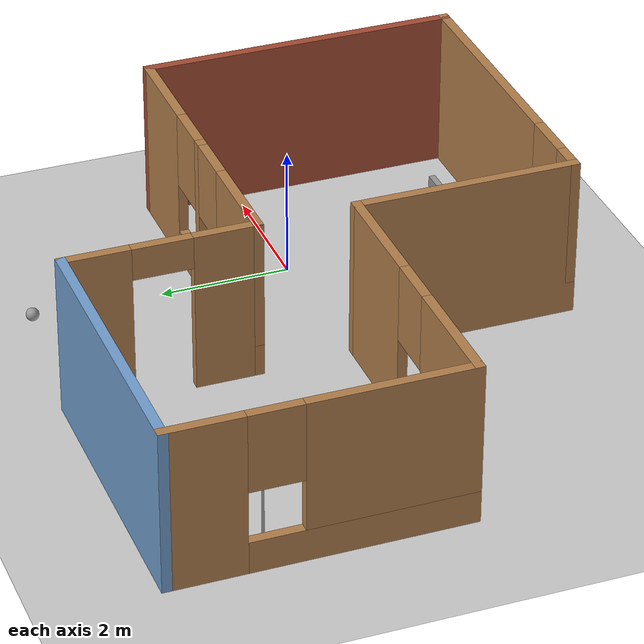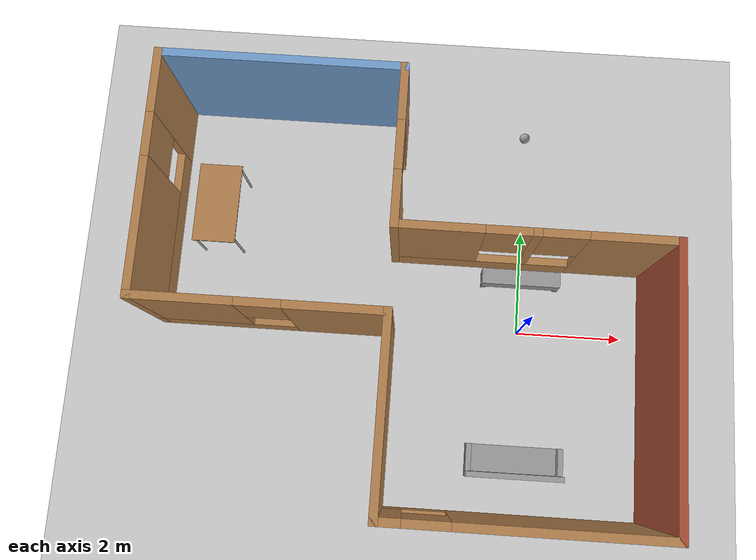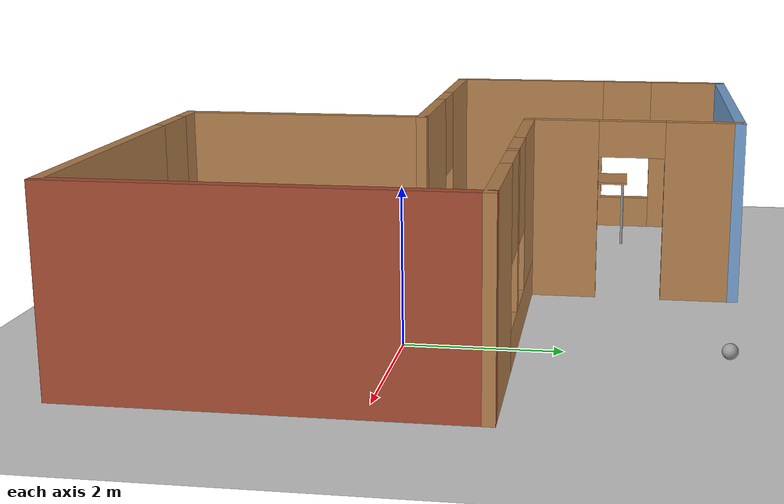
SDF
<sdf version="1.6">
 <world name="default">
  <plugin name="welcome" filename="libwelcome.so"/>
  <light name="sun" type="directional">
   <pose>0 0 10 0 -0 0</pose>
   <diffuse>0.8 0.8 0.8 1</diffuse>
   <specular>0.2 0.2 0.2 1</specular>
   <attenuation>
    <range>1000</range>
    <constant>0.9</constant>
    <linear>0.01</linear>
    <quadratic>0.001</quadratic>
   </attenuation>
   <direction>-0.5 0.1 -0.9</direction>
  </light>
  <model name="ground_plane">
   <static>1</static>
   <link name="link">
    <collision name="collision">
     <geometry><plane><normal>0 0 1</normal><size>100 100</size></plane></geometry>
     <surface>
      <contact><collide_bitmask>65535</collide_bitmask></contact>
      <friction><ode><mu>100</mu><mu2>50</mu2></ode></friction>
     </surface>
    </collision>
    <visual name="visual">
     <cast_shadows>0</cast_shadows>
     <geometry><plane><normal>0 0 1</normal><size>100 100</size></plane></geometry>
     <material>
      <script><uri>file://media/materials/scripts/gazebo.material</uri><name>Gazebo/Grey</name></script>
     </material>
    </visual>
   </link>
  </model>
  <gravity>0 0 -9.8</gravity>
  <magnetic_field>6e-06 2.3e-05 -4.2e-05</magnetic_field>
  <atmosphere type="adiabatic"/>
  <physics name="default_physics" default="0" type="ode">
   <max_step_size>0.001</max_step_size>
   <real_time_factor>1</real_time_factor>
   <real_time_update_rate>1000</real_time_update_rate>
  </physics>
  <scene><ambient>0.4 0.4 0.4 1</ambient><background>0.7 0.7 0.7 1</background><shadows>1</shadows></scene>
  <spherical_coordinates>
   <surface_model>EARTH_WGS84</surface_model>
   <latitude_deg>0</latitude_deg>
   <longitude_deg>0</longitude_deg>
   <elevation>0</elevation>
   <heading_deg>0</heading_deg>
  </spherical_coordinates>
  <model name="home">
   <pose>-2.2 0.35 0 0 -0 0</pose>
   <link name="Wall_11">
    <collision name="Wall_11_Collision">
     <geometry><box><size>5 0.15 2.5</size></box></geometry>
     <pose>0 0 1.25 0 -0 0</pose>
    </collision>
    <visual name="Wall_11_Visual">
     <pose>0 0 1.25 0 -0 0</pose>
     <geometry><box><size>5 0.15 2.5</size></box></geometry>
     <material>
      <script><uri>file://media/materials/scripts/gazebo.material</uri><name>Gazebo/Bricks</name></script>
      <ambient>1 1 1 1</ambient>
     </material>
     <meta><layer>0</layer></meta>
    </visual>
    <pose>4.6 -1.425 0 0 -0 1.5708</pose>
   </link>
   <link name="Wall_12">
    <pose>2.175 1 0 0 -0 3.14159</pose>
    <visual name="Wall_12_Visual_0">
     <pose>-1.68989 0 1.25 0 -0 0</pose>
     <geometry><box><size>1.62021 0.15 2.5</size></box></geometry>
     <material>
      <script><uri>file://media/materials/scripts/gazebo.material</uri><name>Gazebo/Wood</name></script>
      <ambient>1 1 1 1</ambient>
     </material>
     <meta><layer>0</layer></meta>
    </visual>
    <collision name="Wall_12_Collision_0">
     <geometry><box><size>1.62021 0.15 2.5</size></box></geometry>
     <pose>-1.68989 0 1.25 0 -0 0</pose>
    </collision>
    <visual name="Wall_12_Visual_1">
     <pose>0.810106 0 0.25 0 -0 0</pose>
     <geometry><box><size>3.37979 0.15 0.5</size></box></geometry>
     <material>
      <script><uri>file://media/materials/scripts/gazebo.material</uri><name>Gazebo/Wood</name></script>
      <ambient>1 1 1 1</ambient>
     </material>
     <meta><layer>0</layer></meta>
    </visual>
    <collision name="Wall_12_Collision_1">
     <geometry><box><size>3.37979 0.15 0.5</size></box></geometry>
     <pose>0.810106 0 0.25 0 -0 0</pose>
    </collision>
    <visual name="Wall_12_Visual_2">
     <pose>0.000363 0 1.5 0 -0 0</pose>
     <geometry><box><size>0.160302 0.15 2</size></box></geometry>
     <material>
      <script><uri>file://media/materials/scripts/gazebo.material</uri><name>Gazebo/Wood</name></script>
      <ambient>1 1 1 1</ambient>
     </material>
     <meta><layer>0</layer></meta>
    </visual>
    <collision name="Wall_12_Collision_2">
     <geometry><box><size>0.160302 0.15 2</size></box></geometry>
     <pose>0.000363 0 1.5 0 -0 0</pose>
    </collision>
    <visual name="Wall_12_Visual_3">
     <pose>1.69026 0 1.5 0 -0 0</pose>
     <geometry><box><size>1.61949 0.15 2</size></box></geometry>
     <material>
      <script><uri>file://media/materials/scripts/gazebo.material</uri><name>Gazebo/Wood</name></script>
      <ambient>1 1 1 1</ambient>
     </material>
     <meta><layer>0</layer></meta>
    </visual>
    <collision name="Wall_12_Collision_3">
     <geometry><box><size>1.61949 0.15 2</size></box></geometry>
     <pose>1.69026 0 1.5 0 -0 0</pose>
    </collision>
    <visual name="Wall_12_Visual_4">
     <pose>-0.479789 0 1.9 0 -0 0</pose>
     <geometry><box><size>0.8 0.15 1.2</size></box></geometry>
     <material>
      <script><uri>file://media/materials/scripts/gazebo.material</uri><name>Gazebo/Wood</name></script>
      <ambient>1 1 1 1</ambient>
     </material>
     <meta><layer>0</layer></meta>
    </visual>
    <collision name="Wall_12_Collision_4">
     <geometry><box><size>0.8 0.15 1.2</size></box></geometry>
     <pose>-0.479789 0 1.9 0 -0 0</pose>
    </collision>
    <visual name="Wall_12_Visual_5">
     <pose>0.480514 0 1.9 0 -0 0</pose>
     <geometry><box><size>0.8 0.15 1.2</size></box></geometry>
     <material>
      <script><uri>file://media/materials/scripts/gazebo.material</uri><name>Gazebo/Wood</name></script>
      <ambient>1 1 1 1</ambient>
     </material>
     <meta><layer>0</layer></meta>
    </visual>
    <collision name="Wall_12_Collision_5">
     <geometry><box><size>0.8 0.15 1.2</size></box></geometry>
     <pose>0.480514 0 1.9 0 -0 0</pose>
    </collision>
   </link>
   <link name="Wall_14">
    <pose>-0.25 2.425 0 0 -0 1.5708</pose>
    <visual name="Wall_14_Visual_0">
     <pose>-0.982746 0 1.25 0 -0 0</pose>
     <geometry><box><size>1.03451 0.15 2.5</size></box></geometry>
     <material>
      <script><uri>file://media/materials/scripts/gazebo.material</uri><name>Gazebo/Wood</name></script>
      <ambient>1 1 1 1</ambient>
     </material>
     <meta><layer>0</layer></meta>
    </visual>
    <collision name="Wall_14_Collision_0">
     <geometry><box><size>1.03451 0.15 2.5</size></box></geometry>
     <pose>-0.982746 0 1.25 0 -0 0</pose>
    </collision>
    <visual name="Wall_14_Visual_1">
     <pose>0.967254 0 1.25 0 -0 0</pose>
     <geometry><box><size>1.06549 0.15 2.5</size></box></geometry>
     <material>
      <script><uri>file://media/materials/scripts/gazebo.material</uri><name>Gazebo/Wood</name></script>
      <ambient>1 1 1 1</ambient>
     </material>
     <meta><layer>0</layer></meta>
    </visual>
    <collision name="Wall_14_Collision_1">
     <geometry><box><size>1.06549 0.15 2.5</size></box></geometry>
     <pose>0.967254 0 1.25 0 -0 0</pose>
    </collision>
    <visual name="Wall_14_Visual_2">
     <pose>-0.015492 0 2.25 0 -0 0</pose>
     <geometry><box><size>0.9 0.15 0.5</size></box></geometry>
     <material>
      <script><uri>file://media/materials/scripts/gazebo.material</uri><name>Gazebo/Wood</name></script>
      <ambient>1 1 1 1</ambient>
     </material>
     <meta><layer>0</layer></meta>
    </visual>
    <collision name="Wall_14_Collision_2">
     <geometry><box><size>0.9 0.15 0.5</size></box></geometry>
     <pose>-0.015492 0 2.25 0 -0 0</pose>
    </collision>
   </link>
   <link name="Wall_18">
    <collision name="Wall_18_Collision">
     <geometry><box><size>3.5 0.15 2.5</size></box></geometry>
     <pose>0 0 1.25 0 -0 0</pose>
    </collision>
    <visual name="Wall_18_Visual">
     <pose>0 0 1.25 0 -0 0</pose>
     <geometry><box><size>3.5 0.15 2.5</size></box></geometry>
     <material>
      <script><uri>file://media/materials/scripts/gazebo.material</uri><name>Gazebo/Wood</name></script>
      <ambient>1 1 1 1</ambient>
     </material>
     <meta><layer>0</layer></meta>
    </visual>
    <pose>-0.25 -2.175 0 0 -0 1.5708</pose>
   </link>
   <link name="Wall_19">
    <pose>-2.425 -0.5 0 0 -0 3.14159</pose>
    <visual name="Wall_19_Visual_0">
     <pose>-1.32816 0 1.25 0 -0 0</pose>
     <geometry><box><size>1.84368 0.15 2.5</size></box></geometry>
     <material>
      <script><uri>file://media/materials/scripts/gazebo.material</uri><name>Gazebo/Wood</name></script>
      <ambient>1 1 1 1</ambient>
     </material>
     <meta><layer>0</layer></meta>
    </visual>
    <collision name="Wall_19_Collision_0">
     <geometry><box><size>1.84368 0.15 2.5</size></box></geometry>
     <pose>-1.32816 0 1.25 0 -0 0</pose>
    </collision>
    <visual name="Wall_19_Visual_1">
     <pose>0.921841 0 0.25 0 -0 0</pose>
     <geometry><box><size>2.65632 0.15 0.5</size></box></geometry>
     <material>
      <script><uri>file://media/materials/scripts/gazebo.material</uri><name>Gazebo/Wood</name></script>
      <ambient>1 1 1 1</ambient>
     </material>
     <meta><layer>0</layer></meta>
    </visual>
    <collision name="Wall_19_Collision_1">
     <geometry><box><size>2.65632 0.15 0.5</size></box></geometry>
     <pose>0.921841 0 0.25 0 -0 0</pose>
    </collision>
    <visual name="Wall_19_Visual_2">
     <pose>1.32184 0 1.5 0 -0 0</pose>
     <geometry><box><size>1.85632 0.15 2</size></box></geometry>
     <material>
      <script><uri>file://media/materials/scripts/gazebo.material</uri><name>Gazebo/Wood</name></script>
      <ambient>1 1 1 1</ambient>
     </material>
     <meta><layer>0</layer></meta>
    </visual>
    <collision name="Wall_19_Collision_2">
     <geometry><box><size>1.85632 0.15 2</size></box></geometry>
     <pose>1.32184 0 1.5 0 -0 0</pose>
    </collision>
    <visual name="Wall_19_Visual_3">
     <pose>-0.006318 0 1.9 0 -0 0</pose>
     <geometry><box><size>0.8 0.15 1.2</size></box></geometry>
     <material>
      <script><uri>file://media/materials/scripts/gazebo.material</uri><name>Gazebo/Wood</name></script>
      <ambient>1 1 1 1</ambient>
     </material>
     <meta><layer>0</layer></meta>
    </visual>
    <collision name="Wall_19_Collision_3">
     <geometry><box><size>0.8 0.15 1.2</size></box></geometry>
     <pose>-0.006318 0 1.9 0 -0 0</pose>
    </collision>
   </link>
   <link name="Wall_21">
    <pose>-4.6 1.675 0 0 -0 -1.5708</pose>
    <visual name="Wall_21_Visual_0">
     <pose>-1.64688 0 1.25 0 -0 0</pose>
     <geometry><box><size>1.20623 0.15 2.5</size></box></geometry>
     <material>
      <script><uri>file://media/materials/scripts/gazebo.material</uri><name>Gazebo/Wood</name></script>
      <ambient>1 1 1 1</ambient>
     </material>
     <meta><layer>0</layer></meta>
    </visual>
    <collision name="Wall_21_Collision_0">
     <geometry><box><size>1.20623 0.15 2.5</size></box></geometry>
     <pose>-1.64688 0 1.25 0 -0 0</pose>
    </collision>
    <visual name="Wall_21_Visual_1">
     <pose>0.603115 0 0.25 0 -0 0</pose>
     <geometry><box><size>3.29377 0.15 0.5</size></box></geometry>
     <material>
      <script><uri>file://media/materials/scripts/gazebo.material</uri><name>Gazebo/Wood</name></script>
      <ambient>1 1 1 1</ambient>
     </material>
     <meta><layer>0</layer></meta>
    </visual>
    <collision name="Wall_21_Collision_1">
     <geometry><box><size>3.29377 0.15 0.5</size></box></geometry>
     <pose>0.603115 0 0.25 0 -0 0</pose>
    </collision>
    <visual name="Wall_21_Visual_2">
     <pose>1.00311 0 1.5 0 -0 0</pose>
     <geometry><box><size>2.49377 0.15 2</size></box></geometry>
     <material>
      <script><uri>file://media/materials/scripts/gazebo.material</uri><name>Gazebo/Wood</name></script>
      <ambient>1 1 1 1</ambient>
     </material>
     <meta><layer>0</layer></meta>
    </visual>
    <collision name="Wall_21_Collision_2">
     <geometry><box><size>2.49377 0.15 2</size></box></geometry>
     <pose>1.00311 0 1.5 0 -0 0</pose>
    </collision>
    <visual name="Wall_21_Visual_3">
     <pose>-0.64377 0 1.9 0 -0 0</pose>
     <geometry><box><size>0.8 0.15 1.2</size></box></geometry>
     <material>
      <script><uri>file://media/materials/scripts/gazebo.material</uri><name>Gazebo/Wood</name></script>
      <ambient>1 1 1 1</ambient>
     </material>
     <meta><layer>0</layer></meta>
    </visual>
    <collision name="Wall_21_Collision_3">
     <geometry><box><size>0.8 0.15 1.2</size></box></geometry>
     <pose>-0.64377 0 1.9 0 -0 0</pose>
    </collision>
   </link>
   <link name="Wall_25">
    <collision name="Wall_25_Collision">
     <geometry><box><size>4.5 0.15 2.5</size></box></geometry>
     <pose>0 0 1.25 0 -0 0</pose>
    </collision>
    <visual name="Wall_25_Visual">
     <pose>0 0 1.25 0 -0 0</pose>
     <geometry><box><size>4.5 0.15 2.5</size></box></geometry>
     <material>
      <script><uri>file://media/materials/scripts/gazebo.material</uri><name>Gazebo/Grey</name></script>
      <ambient>0.447059 0.623529 0.811765 1</ambient>
     </material>
     <meta><layer>0</layer></meta>
    </visual>
    <pose>-2.425 3.85 0 0 -0 0</pose>
   </link>
   <link name="Wall_9">
    <pose>2.175 -3.85 0 0 -0 3.14159</pose>
    <visual name="Wall_9_Visual_0">
     <pose>-0.653977 0 1.25 0 -0 0</pose>
     <geometry><box><size>3.69204 0.15 2.5</size></box></geometry>
     <material>
      <script><uri>file://media/materials/scripts/gazebo.material</uri><name>Gazebo/Wood</name></script>
      <ambient>1 1 1 1</ambient>
     </material>
     <meta><layer>0</layer></meta>
    </visual>
    <collision name="Wall_9_Collision_0">
     <geometry><box><size>3.69204 0.15 2.5</size></box></geometry>
     <pose>-0.653977 0 1.25 0 -0 0</pose>
    </collision>
    <visual name="Wall_9_Visual_1">
     <pose>1.84602 0 0.25 0 -0 0</pose>
     <geometry><box><size>1.30795 0.15 0.5</size></box></geometry>
     <material>
      <script><uri>file://media/materials/scripts/gazebo.material</uri><name>Gazebo/Wood</name></script>
      <ambient>1 1 1 1</ambient>
     </material>
     <meta><layer>0</layer></meta>
    </visual>
    <collision name="Wall_9_Collision_1">
     <geometry><box><size>1.30795 0.15 0.5</size></box></geometry>
     <pose>1.84602 0 0.25 0 -0 0</pose>
    </collision>
    <visual name="Wall_9_Visual_2">
     <pose>2.24602 0 1.5 0 -0 0</pose>
     <geometry><box><size>0.507955 0.15 2</size></box></geometry>
     <material>
      <script><uri>file://media/materials/scripts/gazebo.material</uri><name>Gazebo/Wood</name></script>
      <ambient>1 1 1 1</ambient>
     </material>
     <meta><layer>0</layer></meta>
    </visual>
    <collision name="Wall_9_Collision_2">
     <geometry><box><size>0.507955 0.15 2</size></box></geometry>
     <pose>2.24602 0 1.5 0 -0 0</pose>
    </collision>
    <visual name="Wall_9_Visual_3">
     <pose>1.59204 0 1.9 0 -0 0</pose>
     <geometry><box><size>0.8 0.15 1.2</size></box></geometry>
     <material>
      <script><uri>file://media/materials/scripts/gazebo.material</uri><name>Gazebo/Wood</name></script>
      <ambient>1 1 1 1</ambient>
     </material>
     <meta><layer>0</layer></meta>
    </visual>
    <collision name="Wall_9_Collision_3">
     <geometry><box><size>0.8 0.15 1.2</size></box></geometry>
     <pose>1.59204 0 1.9 0 -0 0</pose>
    </collision>
   </link>
   <static>1</static>
  </model>
  <model name="tv_stand">
   <link name="link_0">
    <inertial>
     <mass>1</mass>
     <inertia>
      <ixx>0.166667</ixx>
      <ixy>0</ixy>
      <ixz>0</ixz>
      <iyy>0.166667</iyy>
      <iyz>0</iyz>
      <izz>0.166667</izz>
     </inertia>
    </inertial>
    <pose>0 0 0.133333 0 -0 0</pose>
    <visual name="visual">
     <geometry><box><size>1.5 0.3 0.3</size></box></geometry>
     <material>
      <lighting>1</lighting>
      <script><uri>file://media/materials/scripts/gazebo.material</uri><name>Gazebo/Grey</name></script>
      <shader type="pixel"><normal_map>__default__</normal_map></shader>
      <ambient>0.3 0.3 0.3 1</ambient>
      <diffuse>0.7 0.7 0.7 1</diffuse>
      <specular>0.01 0.01 0.01 1</specular>
      <emissive>0 0 0 1</emissive>
     </material>
    </visual>
    <collision name="collision">
     <geometry><box><size>1.5 0.3 0.3</size></box></geometry>
     <surface>
      <friction>
       <ode><mu>1</mu><mu2>1</mu2><fdir1>0 0 0</fdir1><slip1>0</slip1><slip2>0</slip2></ode>
       <torsional>
        <coefficient>1</coefficient>
        <patch_radius>0</patch_radius>
        <surface_radius>0</surface_radius>
        <use_patch_radius>1</use_patch_radius>
        <ode><slip>0</slip></ode>
       </torsional>
      </friction>
      <bounce><restitution_coefficient>0</restitution_coefficient><threshold>1e+06</threshold></bounce>
      <contact>
       <collide_without_contact>0</collide_without_contact>
       <collide_without_contact_bitmask>1</collide_without_contact_bitmask>
       <collide_bitmask>1</collide_bitmask>
       <ode>
        <soft_cfm>0</soft_cfm>
        <soft_erp>0.2</soft_erp>
        <kp>1e+13</kp>
        <kd>1</kd>
        <max_vel>0.01</max_vel>
        <min_depth>0</min_depth>
       </ode>
       <bullet>
        <split_impulse>1</split_impulse>
        <split_impulse_penetration_threshold>-0.01</split_impulse_penetration_threshold>
        <soft_cfm>0</soft_cfm>
        <soft_erp>0.2</soft_erp>
        <kp>1e+13</kp>
        <kd>1</kd>
       </bullet>
      </contact>
     </surface>
    </collision>
   </link>
   <link name="link_1">
    <inertial>
     <mass>1</mass>
     <inertia>
      <ixx>0.166667</ixx>
      <ixy>0</ixy>
      <ixz>0</ixz>
      <iyy>0.166667</iyy>
      <iyz>0</iyz>
      <izz>0.166667</izz>
     </inertia>
    </inertial>
    <pose>-0.7 0 -0.066667 0 -0 0</pose>
    <visual name="visual">
     <geometry><box><size>0.1 0.3 0.1</size></box></geometry>
     <material>
      <lighting>1</lighting>
      <script><uri>file://media/materials/scripts/gazebo.material</uri><name>Gazebo/Grey</name></script>
      <shader type="pixel"><normal_map>__default__</normal_map></shader>
      <ambient>0.3 0.3 0.3 1</ambient>
      <diffuse>0.7 0.7 0.7 1</diffuse>
      <specular>0.01 0.01 0.01 1</specular>
      <emissive>0 0 0 1</emissive>
     </material>
    </visual>
    <collision name="collision">
     <geometry><box><size>0.1 0.3 0.1</size></box></geometry>
     <surface>
      <friction>
       <ode><mu>1</mu><mu2>1</mu2><fdir1>0 0 0</fdir1><slip1>0</slip1><slip2>0</slip2></ode>
       <torsional>
        <coefficient>1</coefficient>
        <patch_radius>0</patch_radius>
        <surface_radius>0</surface_radius>
        <use_patch_radius>1</use_patch_radius>
        <ode><slip>0</slip></ode>
       </torsional>
      </friction>
      <bounce><restitution_coefficient>0</restitution_coefficient><threshold>1e+06</threshold></bounce>
      <contact>
       <collide_without_contact>0</collide_without_contact>
       <collide_without_contact_bitmask>1</collide_without_contact_bitmask>
       <collide_bitmask>1</collide_bitmask>
       <ode>
        <soft_cfm>0</soft_cfm>
        <soft_erp>0.2</soft_erp>
        <kp>1e+13</kp>
        <kd>1</kd>
        <max_vel>0.01</max_vel>
        <min_depth>0</min_depth>
       </ode>
       <bullet>
        <split_impulse>1</split_impulse>
        <split_impulse_penetration_threshold>-0.01</split_impulse_penetration_threshold>
        <soft_cfm>0</soft_cfm>
        <soft_erp>0.2</soft_erp>
        <kp>1e+13</kp>
        <kd>1</kd>
       </bullet>
      </contact>
     </surface>
    </collision>
   </link>
   <link name="link_1_clone">
    <inertial>
     <mass>1</mass>
     <inertia>
      <ixx>0.166667</ixx>
      <ixy>0</ixy>
      <ixz>0</ixz>
      <iyy>0.166667</iyy>
      <iyz>0</iyz>
      <izz>0.166667</izz>
     </inertia>
    </inertial>
    <pose>0.7 0 -0.066667 0 -0 0</pose>
    <visual name="visual">
     <geometry><box><size>0.1 0.3 0.1</size></box></geometry>
     <material>
      <lighting>1</lighting>
      <script><uri>file://media/materials/scripts/gazebo.material</uri><name>Gazebo/Grey</name></script>
      <shader type="pixel"><normal_map>__default__</normal_map></shader>
      <ambient>0.3 0.3 0.3 1</ambient>
      <diffuse>0.7 0.7 0.7 1</diffuse>
      <specular>0.01 0.01 0.01 1</specular>
      <emissive>0 0 0 1</emissive>
     </material>
    </visual>
    <collision name="collision">
     <geometry><box><size>0.1 0.3 0.1</size></box></geometry>
     <surface>
      <friction>
       <ode><mu>1</mu><mu2>1</mu2><fdir1>0 0 0</fdir1><slip1>0</slip1><slip2>0</slip2></ode>
       <torsional>
        <coefficient>1</coefficient>
        <patch_radius>0</patch_radius>
        <surface_radius>0</surface_radius>
        <use_patch_radius>1</use_patch_radius>
        <ode><slip>0</slip></ode>
       </torsional>
      </friction>
      <bounce><restitution_coefficient>0</restitution_coefficient><threshold>1e+06</threshold></bounce>
      <contact>
       <collide_without_contact>0</collide_without_contact>
       <collide_without_contact_bitmask>1</collide_without_contact_bitmask>
       <collide_bitmask>1</collide_bitmask>
       <ode>
        <soft_cfm>0</soft_cfm>
        <soft_erp>0.2</soft_erp>
        <kp>1e+13</kp>
        <kd>1</kd>
        <max_vel>0.01</max_vel>
        <min_depth>0</min_depth>
       </ode>
       <bullet>
        <split_impulse>1</split_impulse>
        <split_impulse_penetration_threshold>-0.01</split_impulse_penetration_threshold>
        <soft_cfm>0</soft_cfm>
        <soft_erp>0.2</soft_erp>
        <kp>1e+13</kp>
        <kd>1</kd>
       </bullet>
      </contact>
     </surface>
    </collision>
   </link>
   <joint name="link_0_JOINT_0" type="fixed">
    <parent>link_0</parent>
    <child>link_1</child>
    <physics>
     <ode><limit><cfm>0</cfm><erp>0.2</erp></limit><suspension><cfm>0</cfm><erp>0.2</erp></suspension></ode>
    </physics>
   </joint>
   <joint name="link_0_JOINT_1" type="fixed">
    <parent>link_0</parent>
    <child>link_1_clone</child>
    <physics>
     <ode><limit><cfm>0</cfm><erp>0.2</erp></limit><suspension><cfm>0</cfm><erp>0.2</erp></suspension></ode>
    </physics>
   </joint>
   <static>0</static>
   <pose>0.001231 1.02849 0.116667 -3e-06 -0 -0.000937</pose>
  </model>
  <model name="table">
   <static>1</static>
   <link name="link">
    <collision name="surface">
     <pose>0 0 1 0 -0 0</pose>
     <geometry><box><size>1.5 0.8 0.03</size></box></geometry>
     <surface><friction><ode><mu>0.6</mu><mu2>0.6</mu2></ode></friction></surface>
    </collision>
    <visual name="visual1">
     <pose>0 0 1 0 -0 0</pose>
     <geometry><box><size>1.5 0.8 0.03</size></box></geometry>
     <material>
      <script><uri>file://media/materials/scripts/gazebo.material</uri><name>Gazebo/Wood</name></script>
     </material>
    </visual>
    <collision name="front_left_leg">
     <pose>0.68 0.38 0.5 0 -0 0</pose>
     <geometry><cylinder><radius>0.02</radius><length>1</length></cylinder></geometry>
    </collision>
    <visual name="front_left_leg">
     <pose>0.68 0.38 0.5 0 -0 0</pose>
     <geometry><cylinder><radius>0.02</radius><length>1</length></cylinder></geometry>
     <material>
      <script><uri>file://media/materials/scripts/gazebo.material</uri><name>Gazebo/Grey</name></script>
     </material>
    </visual>
    <collision name="front_right_leg">
     <pose>0.68 -0.38 0.5 0 -0 0</pose>
     <geometry><cylinder><radius>0.02</radius><length>1</length></cylinder></geometry>
    </collision>
    <visual name="front_right_leg">
     <pose>0.68 -0.38 0.5 0 -0 0</pose>
     <geometry><cylinder><radius>0.02</radius><length>1</length></cylinder></geometry>
     <material>
      <script><uri>file://media/materials/scripts/gazebo.material</uri><name>Gazebo/Grey</name></script>
     </material>
    </visual>
    <collision name="back_right_leg">
     <pose>-0.68 -0.38 0.5 0 -0 0</pose>
     <geometry><cylinder><radius>0.02</radius><length>1</length></cylinder></geometry>
    </collision>
    <visual name="back_right_leg">
     <pose>-0.68 -0.38 0.5 0 -0 0</pose>
     <geometry><cylinder><radius>0.02</radius><length>1</length></cylinder></geometry>
     <material>
      <script><uri>file://media/materials/scripts/gazebo.material</uri><name>Gazebo/Grey</name></script>
     </material>
    </visual>
    <collision name="back_left_leg">
     <pose>-0.68 0.38 0.5 0 -0 0</pose>
     <geometry><cylinder><radius>0.02</radius><length>1</length></cylinder></geometry>
    </collision>
    <visual name="back_left_leg">
     <pose>-0.68 0.38 0.5 0 -0 0</pose>
     <geometry><cylinder><radius>0.02</radius><length>1</length></cylinder></geometry>
     <material>
      <script><uri>file://media/materials/scripts/gazebo.material</uri><name>Gazebo/Grey</name></script>
     </material>
    </visual>
   </link>
   <pose>-5.84913 1.96094 0 0 -0 1.5708</pose>
  </model>
  <model name="my_ball">
   <link name="link_0">
    <inertial>
     <mass>1</mass>
     <inertia><ixx>0.1</ixx><ixy>0</ixy><ixz>0</ixz><iyy>0.1</iyy><iyz>0</iyz><izz>0.1</izz></inertia>
    </inertial>
    <visual name="visual">
     <geometry><sphere><radius>0.1</radius></sphere></geometry>
     <material>
      <lighting>1</lighting>
      <script><uri>file://media/materials/scripts/gazebo.material</uri><name>Gazebo/Grey</name></script>
      <shader type="pixel"><normal_map>__default__</normal_map></shader>
      <ambient>1 1 1 1</ambient>
      <diffuse>1 1 1 1</diffuse>
      <specular>1 1 1 1</specular>
      <emissive>1 1 1 1</emissive>
     </material>
    </visual>
    <collision name="collision">
     <geometry><sphere><radius>0.1</radius></sphere></geometry>
     <surface>
      <friction>
       <ode><mu>1</mu><mu2>1</mu2><fdir1>0 0 0</fdir1><slip1>0</slip1><slip2>0</slip2></ode>
       <torsional>
        <coefficient>1</coefficient>
        <patch_radius>0</patch_radius>
        <surface_radius>0</surface_radius>
        <use_patch_radius>1</use_patch_radius>
        <ode><slip>0</slip></ode>
       </torsional>
      </friction>
      <bounce><restitution_coefficient>0</restitution_coefficient><threshold>1e+06</threshold></bounce>
      <contact>
       <collide_without_contact>0</collide_without_contact>
       <collide_without_contact_bitmask>1</collide_without_contact_bitmask>
       <collide_bitmask>1</collide_bitmask>
       <ode>
        <soft_cfm>0</soft_cfm>
        <soft_erp>0.2</soft_erp>
        <kp>1e+13</kp>
        <kd>1</kd>
        <max_vel>0.01</max_vel>
        <min_depth>0</min_depth>
       </ode>
       <bullet>
        <split_impulse>1</split_impulse>
        <split_impulse_penetration_threshold>-0.01</split_impulse_penetration_threshold>
        <soft_cfm>0</soft_cfm>
        <soft_erp>0.2</soft_erp>
        <kp>1e+13</kp>
        <kd>1</kd>
       </bullet>
      </contact>
     </surface>
    </collision>
   </link>
   <static>0</static>
   <pose>0 4 0.1 0 -0 0</pose>
  </model>
  <model name="sofa">
   <link name="link_0">
    <inertial>
     <mass>1</mass>
     <inertia>
      <ixx>0.166667</ixx>
      <ixy>0</ixy>
      <ixz>0</ixz>
      <iyy>0.166667</iyy>
      <iyz>0</iyz>
      <izz>0.166667</izz>
     </inertia>
    </inertial>
    <pose>0 0.0375 -0.175 0 -0 0</pose>
    <visual name="visual">
     <geometry><box><size>1.8 0.6 0.2</size></box></geometry>
     <material>
      <lighting>1</lighting>
      <script><uri>file://media/materials/scripts/gazebo.material</uri><name>Gazebo/Grey</name></script>
      <shader type="pixel"><normal_map>__default__</normal_map></shader>
      <ambient>0.3 0.3 0.3 1</ambient>
      <diffuse>0.7 0.7 0.7 1</diffuse>
      <specular>0.01 0.01 0.01 1</specular>
      <emissive>0 0 0 1</emissive>
     </material>
    </visual>
    <collision name="collision">
     <geometry><box><size>1.8 0.6 0.2</size></box></geometry>
     <surface>
      <friction>
       <ode><mu>1</mu><mu2>1</mu2><fdir1>0 0 0</fdir1><slip1>0</slip1><slip2>0</slip2></ode>
       <torsional>
        <coefficient>1</coefficient>
        <patch_radius>0</patch_radius>
        <surface_radius>0</surface_radius>
        <use_patch_radius>1</use_patch_radius>
        <ode><slip>0</slip></ode>
       </torsional>
      </friction>
      <bounce><restitution_coefficient>0</restitution_coefficient><threshold>1e+06</threshold></bounce>
      <contact>
       <collide_without_contact>0</collide_without_contact>
       <collide_without_contact_bitmask>1</collide_without_contact_bitmask>
       <collide_bitmask>1</collide_bitmask>
       <ode>
        <soft_cfm>0</soft_cfm>
        <soft_erp>0.2</soft_erp>
        <kp>1e+13</kp>
        <kd>1</kd>
        <max_vel>0.01</max_vel>
        <min_depth>0</min_depth>
       </ode>
       <bullet>
        <split_impulse>1</split_impulse>
        <split_impulse_penetration_threshold>-0.01</split_impulse_penetration_threshold>
        <soft_cfm>0</soft_cfm>
        <soft_erp>0.2</soft_erp>
        <kp>1e+13</kp>
        <kd>1</kd>
       </bullet>
      </contact>
     </surface>
    </collision>
   </link>
   <link name="link_4">
    <inertial>
     <mass>1</mass>
     <inertia>
      <ixx>0.166667</ixx>
      <ixy>0</ixy>
      <ixz>0</ixz>
      <iyy>0.166667</iyy>
      <iyz>0</iyz>
      <izz>0.166667</izz>
     </inertia>
    </inertial>
    <pose>0 -0.2125 0.125 0 -0 0</pose>
    <visual name="visual">
     <geometry><box><size>1.8 0.1 0.4</size></box></geometry>
     <material>
      <lighting>1</lighting>
      <script><uri>file://media/materials/scripts/gazebo.material</uri><name>Gazebo/Grey</name></script>
      <shader type="pixel"><normal_map>__default__</normal_map></shader>
      <ambient>0.3 0.3 0.3 1</ambient>
      <diffuse>0.7 0.7 0.7 1</diffuse>
      <specular>0.01 0.01 0.01 1</specular>
      <emissive>0 0 0 1</emissive>
     </material>
    </visual>
    <collision name="collision">
     <geometry><box><size>1.8 0.1 0.4</size></box></geometry>
     <surface>
      <friction>
       <ode><mu>1</mu><mu2>1</mu2><fdir1>0 0 0</fdir1><slip1>0</slip1><slip2>0</slip2></ode>
       <torsional>
        <coefficient>1</coefficient>
        <patch_radius>0</patch_radius>
        <surface_radius>0</surface_radius>
        <use_patch_radius>1</use_patch_radius>
        <ode><slip>0</slip></ode>
       </torsional>
      </friction>
      <bounce><restitution_coefficient>0</restitution_coefficient><threshold>1e+06</threshold></bounce>
      <contact>
       <collide_without_contact>0</collide_without_contact>
       <collide_without_contact_bitmask>1</collide_without_contact_bitmask>
       <collide_bitmask>1</collide_bitmask>
       <ode>
        <soft_cfm>0</soft_cfm>
        <soft_erp>0.2</soft_erp>
        <kp>1e+13</kp>
        <kd>1</kd>
        <max_vel>0.01</max_vel>
        <min_depth>0</min_depth>
       </ode>
       <bullet>
        <split_impulse>1</split_impulse>
        <split_impulse_penetration_threshold>-0.01</split_impulse_penetration_threshold>
        <soft_cfm>0</soft_cfm>
        <soft_erp>0.2</soft_erp>
        <kp>1e+13</kp>
        <kd>1</kd>
       </bullet>
      </contact>
     </surface>
    </collision>
   </link>
   <link name="link_5">
    <inertial>
     <mass>1</mass>
     <inertia>
      <ixx>0.166667</ixx>
      <ixy>0</ixy>
      <ixz>0</ixz>
      <iyy>0.166667</iyy>
      <iyz>0</iyz>
      <izz>0.166667</izz>
     </inertia>
    </inertial>
    <pose>-0.85 0.0875 0.025 0 -0 0</pose>
    <visual name="visual">
     <geometry><box><size>0.1 0.5 0.2</size></box></geometry>
     <material>
      <lighting>1</lighting>
      <script><uri>file://media/materials/scripts/gazebo.material</uri><name>Gazebo/Grey</name></script>
      <shader type="pixel"><normal_map>__default__</normal_map></shader>
      <ambient>0.3 0.3 0.3 1</ambient>
      <diffuse>0.7 0.7 0.7 1</diffuse>
      <specular>0.01 0.01 0.01 1</specular>
      <emissive>0 0 0 1</emissive>
     </material>
    </visual>
    <collision name="collision">
     <geometry><box><size>0.1 0.5 0.2</size></box></geometry>
     <surface>
      <friction>
       <ode><mu>1</mu><mu2>1</mu2><fdir1>0 0 0</fdir1><slip1>0</slip1><slip2>0</slip2></ode>
       <torsional>
        <coefficient>1</coefficient>
        <patch_radius>0</patch_radius>
        <surface_radius>0</surface_radius>
        <use_patch_radius>1</use_patch_radius>
        <ode><slip>0</slip></ode>
       </torsional>
      </friction>
      <bounce><restitution_coefficient>0</restitution_coefficient><threshold>1e+06</threshold></bounce>
      <contact>
       <collide_without_contact>0</collide_without_contact>
       <collide_without_contact_bitmask>1</collide_without_contact_bitmask>
       <collide_bitmask>1</collide_bitmask>
       <ode>
        <soft_cfm>0</soft_cfm>
        <soft_erp>0.2</soft_erp>
        <kp>1e+13</kp>
        <kd>1</kd>
        <max_vel>0.01</max_vel>
        <min_depth>0</min_depth>
       </ode>
       <bullet>
        <split_impulse>1</split_impulse>
        <split_impulse_penetration_threshold>-0.01</split_impulse_penetration_threshold>
        <soft_cfm>0</soft_cfm>
        <soft_erp>0.2</soft_erp>
        <kp>1e+13</kp>
        <kd>1</kd>
       </bullet>
      </contact>
     </surface>
    </collision>
   </link>
   <link name="link_5_clone">
    <inertial>
     <mass>1</mass>
     <inertia>
      <ixx>0.166667</ixx>
      <ixy>0</ixy>
      <ixz>0</ixz>
      <iyy>0.166667</iyy>
      <iyz>0</iyz>
      <izz>0.166667</izz>
     </inertia>
    </inertial>
    <pose>0.85 0.0875 0.025 0 -0 0</pose>
    <visual name="visual">
     <geometry><box><size>0.1 0.5 0.2</size></box></geometry>
     <material>
      <lighting>1</lighting>
      <script><uri>file://media/materials/scripts/gazebo.material</uri><name>Gazebo/Grey</name></script>
      <shader type="pixel"><normal_map>__default__</normal_map></shader>
      <ambient>0.3 0.3 0.3 1</ambient>
      <diffuse>0.7 0.7 0.7 1</diffuse>
      <specular>0.01 0.01 0.01 1</specular>
      <emissive>0 0 0 1</emissive>
     </material>
    </visual>
    <collision name="collision">
     <geometry><box><size>0.1 0.5 0.2</size></box></geometry>
     <surface>
      <friction>
       <ode><mu>1</mu><mu2>1</mu2><fdir1>0 0 0</fdir1><slip1>0</slip1><slip2>0</slip2></ode>
       <torsional>
        <coefficient>1</coefficient>
        <patch_radius>0</patch_radius>
        <surface_radius>0</surface_radius>
        <use_patch_radius>1</use_patch_radius>
        <ode><slip>0</slip></ode>
       </torsional>
      </friction>
      <bounce><restitution_coefficient>0</restitution_coefficient><threshold>1e+06</threshold></bounce>
      <contact>
       <collide_without_contact>0</collide_without_contact>
       <collide_without_contact_bitmask>1</collide_without_contact_bitmask>
       <collide_bitmask>1</collide_bitmask>
       <ode>
        <soft_cfm>0</soft_cfm>
        <soft_erp>0.2</soft_erp>
        <kp>1e+13</kp>
        <kd>1</kd>
        <max_vel>0.01</max_vel>
        <min_depth>0</min_depth>
       </ode>
       <bullet>
        <split_impulse>1</split_impulse>
        <split_impulse_penetration_threshold>-0.01</split_impulse_penetration_threshold>
        <soft_cfm>0</soft_cfm>
        <soft_erp>0.2</soft_erp>
        <kp>1e+13</kp>
        <kd>1</kd>
       </bullet>
      </contact>
     </surface>
    </collision>
   </link>
   <joint name="link_0_JOINT_0" type="fixed">
    <parent>link_0</parent>
    <child>link_4</child>
    <physics>
     <ode><limit><cfm>0</cfm><erp>0.2</erp></limit><suspension><cfm>0</cfm><erp>0.2</erp></suspension></ode>
    </physics>
   </joint>
   <joint name="link_0_JOINT_1" type="fixed">
    <parent>link_0</parent>
    <child>link_5_clone</child>
    <physics>
     <ode><limit><cfm>0</cfm><erp>0.2</erp></limit><suspension><cfm>0</cfm><erp>0.2</erp></suspension></ode>
    </physics>
   </joint>
   <joint name="link_0_JOINT_2" type="fixed">
    <parent>link_0</parent>
    <child>link_5</child>
    <physics>
     <ode><limit><cfm>0</cfm><erp>0.2</erp></limit><suspension><cfm>0</cfm><erp>0.2</erp></suspension></ode>
    </physics>
   </joint>
   <static>0</static>
   <pose>-0.001228 -2.50306 0.275 1e-06 0 0.001094</pose>
  </model>
  <plugin filename="libcollision_map_creator.so" name="collision_map_creator"/>
 </world>
</sdf>
